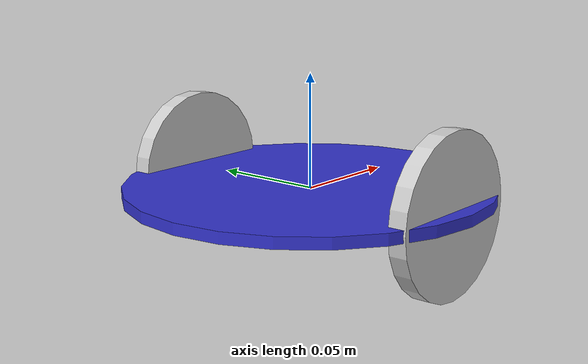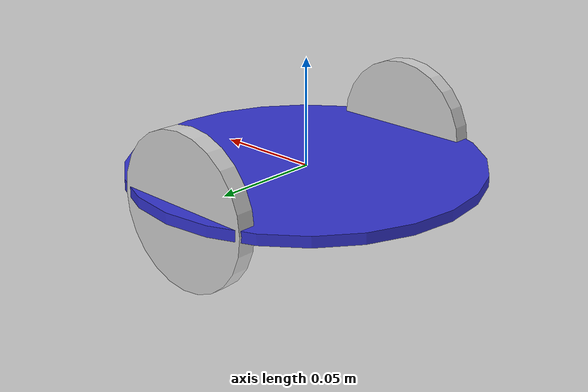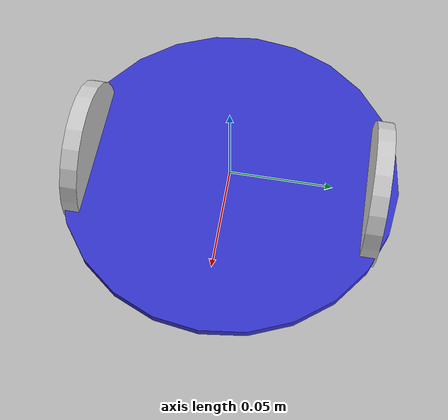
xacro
<?xml version="1.0"?>
<robot name="amblebot" xmlns:xacro="http://www.ros.org/wiki/xacro">
    <link name="base_link"/>
    <joint name="base_joint" type="fixed">
      <origin rpy="0 0 0" xyz="0 0 0"/>
      <axis xyz="0 0 1"/>
      <parent link="base_link"/>
      <child link="chassis"/>
    </joint>
    <link name="chassis">
      <visual>
        <origin rpy="0 0 0" xyz="0 0 0"/>
        <geometry>
          <cylinder radius="0.0815" length="0.005"/>
        </geometry>
        <material name="blue">
          <color rgba="0.2 0.2 0.8 1.0"/>
        </material>
      </visual>
      <collision>
        <origin rpy="0 0 0" xyz="0 0 0"/>
        <geometry>
          <cylinder radius="0.0817" length="0.007"/>
        </geometry>
        <material name="blue">
          <color rgba="0.2 0.2 0.8 0.5"/>
        </material>
      </collision>
      <inertial>
        <origin rpy="0 0 0" xyz="0.0 0.0 0.0"/>
        <mass value="0.01"/>
        <inertia ixx="2e-08" ixy="0" ixz="0" iyy="3e-08" iyz="0" izz="2e-08"/>
      </inertial>
    </link>

    <xacro:macro name="wheel_assembly" params="side reflect">
    <link name="${side}_wheel">
      <visual>
        <origin rpy="0 0 0" xyz="0 0 0"/>
        <geometry>
          <cylinder radius="0.035" length="0.008"/>
        </geometry>
        <material name="white">
          <color rgba="0.8 0.8 0.8 1"/>
        </material>
      </visual>
      <collision>
        <origin rpy="0 0 0" xyz="0 0 0"/>
        <geometry>
          <cylinder radius="0.035" length="0.008"/>
        </geometry>
        <material name="white">
          <color rgba="0.8 0.8 0.8 1"/>
        </material>
      </collision>
      <inertial>
        <origin rpy="0 0 0" xyz="0.0 0.0 0.0"/>
        <mass value="0.003"/>
        <inertia ixx="2e-08" ixy="0" ixz="0" iyy="3e-08" iyz="0" izz="2e-08"/>
      </inertial>
    </link>

    <joint name="${side}_wheel_joint" type="continuous">
      <origin rpy="${-pi/2*reflect} 0 0" xyz="0.0 ${reflect*0.070} 0.0"/>
      <axis xyz="0 0 1"/>
      <parent link="chassis"/>
      <child link="${side}_wheel"/>
    </joint>
    </xacro:macro>

  <xacro:wheel_assembly side="right" reflect="-1"/>
  <xacro:wheel_assembly side="left" reflect="1"/>
</robot>
